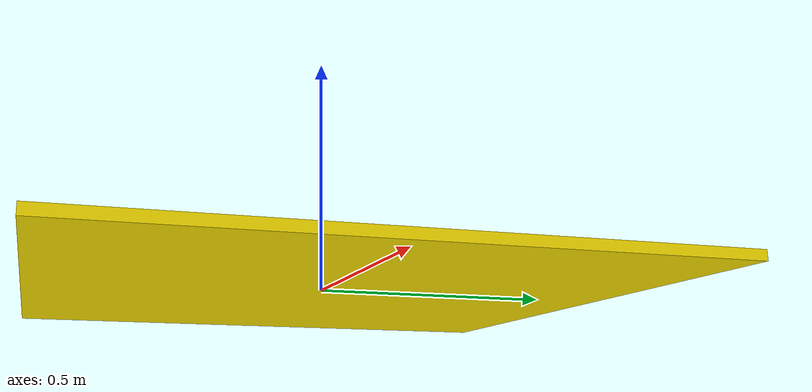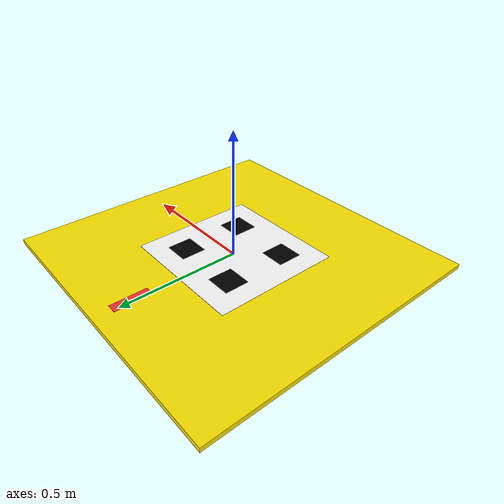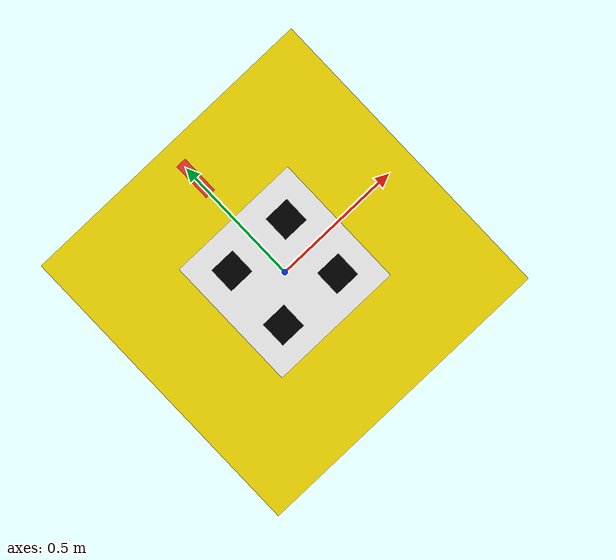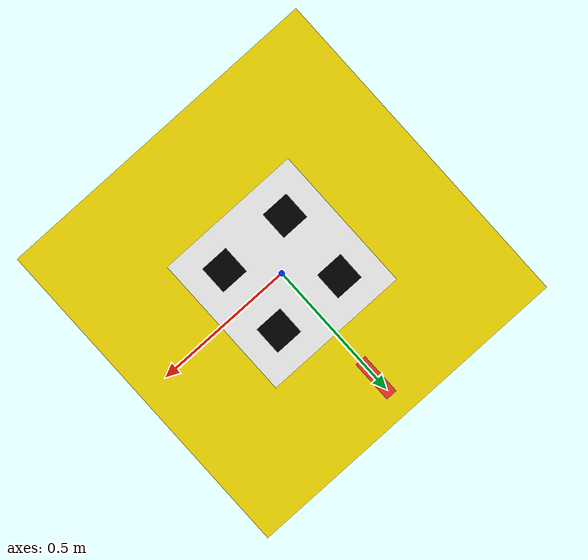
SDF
<?xml version="1.0" ?>
<sdf version="1.6">
  <model name="landing_pad">
    <static>true</static>

    <link name="pad">
      <pose>0 0 0 0 0 0</pose>

      <!-- Main pad surface -->
      <collision name="pad_col">
        <geometry><box><size>1.2 1.2 0.02</size></box></geometry>
      </collision>
      <visual name="pad_vis">
        <geometry><box><size>1.2 1.2 0.02</size></box></geometry>
        <material>
          <ambient>0.9 0.8 0.0 1</ambient>
          <diffuse>1.0 0.9 0.0 1</diffuse>
        </material>
      </visual>

      <!-- ArUco marker representation (white square centre) -->
      <visual name="marker_bg">
        <pose>0 0 0.011 0 0 0</pose>
        <geometry><box><size>0.52 0.52 0.001</size></box></geometry>
        <material><ambient>1 1 1 1</ambient><diffuse>1 1 1 1</diffuse></material>
      </visual>
      <visual name="marker_block_tl">
        <pose>-0.13 0.13 0.012 0 0 0</pose>
        <geometry><box><size>0.1 0.1 0.001</size></box></geometry>
        <material><ambient>0 0 0 1</ambient><diffuse>0 0 0 1</diffuse></material>
      </visual>
      <visual name="marker_block_tr">
        <pose>0.13 0.13 0.012 0 0 0</pose>
        <geometry><box><size>0.1 0.1 0.001</size></box></geometry>
        <material><ambient>0 0 0 1</ambient><diffuse>0 0 0 1</diffuse></material>
      </visual>
      <visual name="marker_block_bl">
        <pose>-0.13 -0.13 0.012 0 0 0</pose>
        <geometry><box><size>0.1 0.1 0.001</size></box></geometry>
        <material><ambient>0 0 0 1</ambient><diffuse>0 0 0 1</diffuse></material>
      </visual>
      <visual name="marker_block_br">
        <pose>0.13 -0.13 0.012 0 0 0</pose>
        <geometry><box><size>0.1 0.1 0.001</size></box></geometry>
        <material><ambient>0 0 0 1</ambient><diffuse>0 0 0 1</diffuse></material>
      </visual>

      <!-- Quadrant direction arrows -->
      <visual name="north_arrow">
        <pose>0 0.45 0.011 0 0 0</pose>
        <geometry><box><size>0.04 0.15 0.001</size></box></geometry>
        <material><ambient>1 0.2 0.2 1</ambient><diffuse>1 0.2 0.2 1</diffuse></material>
      </visual>

    </link>
  </model>
</sdf>
